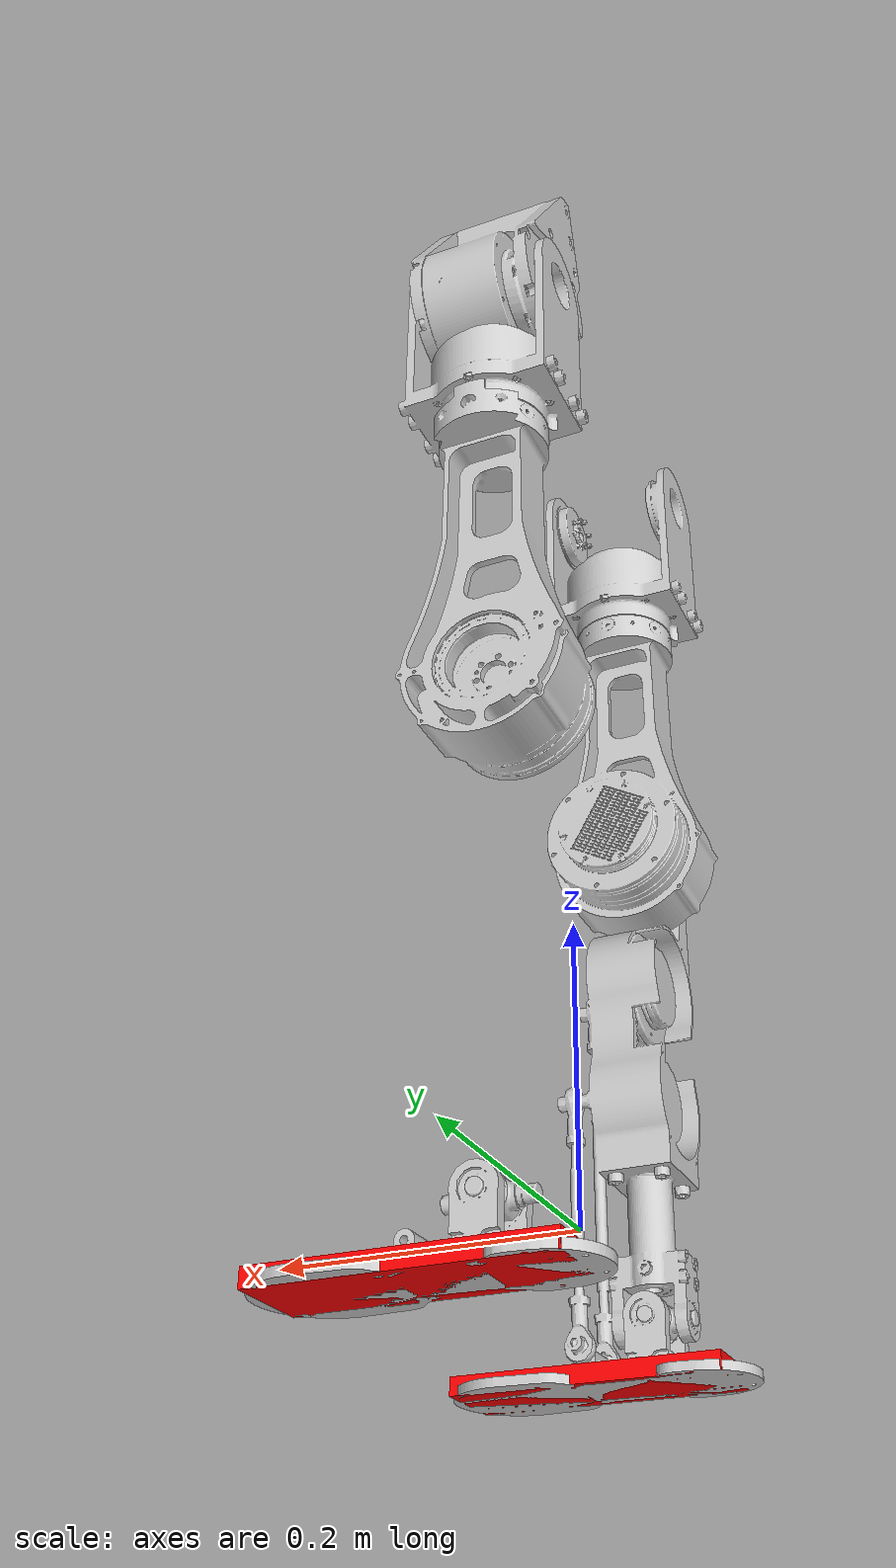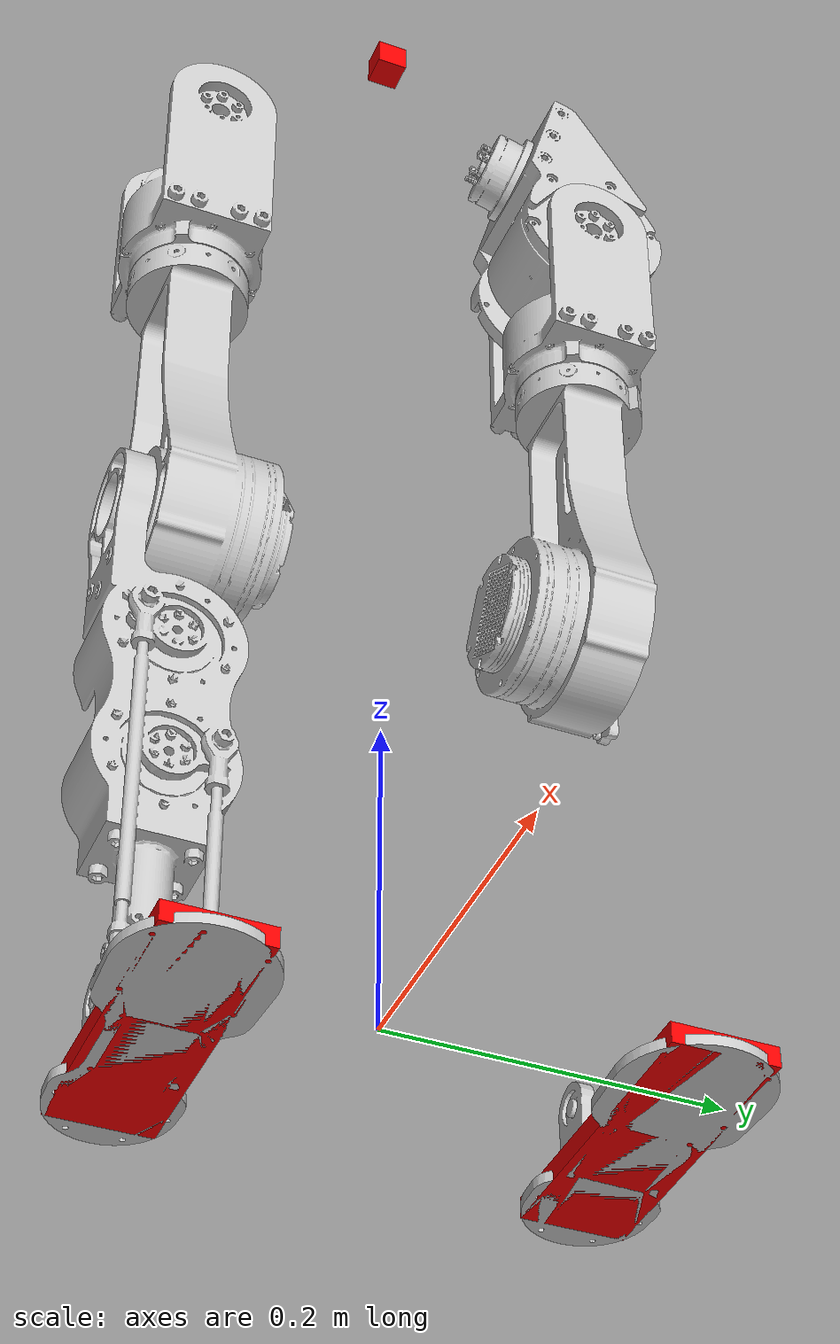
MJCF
<mujoco model="Bipedal_Final">
    <option gravity="0 0 -9.81" />
    <compiler angle="degree" meshdir="meshes/" autolimits="true" />
    <!-- discardvisual="True"  -->

    <option timestep="0.001"></option>
    <statistic extent="0.3" center="0.3 0 0" meansize=".03" />

    <default>
        <geom type="mesh" />
    </default>
    <default>
        <default class="visual">
            <geom contype="0" conaffinity="0" group="0" density="0" rgba="0.8 0.8 0.8 1" />
        </default>
        <default class="transparent">
            <geom contype="0" conaffinity="0" group="0" density="0" rgba="0.5 0.5 0.5 0.3" />
        </default>

        <default class="collision">
            <geom group="3" />
            <default class="contact">
                <geom size="0.09 0.03 0.006" pos="0.04 0 -0.034" type="box" contype="1"
                    conaffinity="1" friction="1.0 0.05 0.001" condim="3" />
                <site size="0.09 0.03 0.006" pos="0.04 0 -0.034" type="box" />
            </default>
            <default class="foot2">
                <geom size="0.027 0.0325" pos="0 9.61687e-05 0.0388277" type="cylinder" />
            </default>
        </default>

    </default>

    <default>
        <default class="AK8064_actuator">
            <joint damping="0.0" armature="0.0" frictionloss="0.0" />
        </default>

        <default class="AK7010_actuator">
            <joint damping="0.0" armature="0.0" frictionloss="0.0" />
        </default>

        <default class="AK109_actuator">
            <joint damping="0.0" armature="0.0" frictionloss="0.0" />
        </default>

        <default class="AK606_actuator">
            <joint damping="0.0" armature="0.0" frictionloss="0.0" />
        </default>
    </default>

    <!--   Fusion outputs meshes with mm units by default, but must be converted to m in MuJoCo, hence
    the scaling   -->
    <asset>
        <!--   Torso  -->
        <mesh name="link0_torso" file="link0_torso.stl" scale="0.001 0.001 0.001" />

        <!--   Left Leg stl file  -->
        <mesh name="left_hip_pitch_link_v2" file="left_hip_pitch_link_v2.stl" scale="0.001 0.001 0.001" />
        <mesh name="left_hip_roll_link" file="left_hip_roll_link.stl" scale="0.001 0.001 0.001" />
        <mesh name="left_hip_yaw_link" file="left_hip_yaw_link.stl" scale="0.001 0.001 0.001" />
        <mesh name="left_knee_link" file="left_knee_link.stl" scale="0.001 0.001 0.001" />
        <mesh name="left_ankle_roll_link" file="left_ankle_roll_link.stl" scale="0.001 0.001 0.001" />
        <mesh name="left_ankle_pitch_link" file="left_ankle_pitch_link.stl" scale="0.001 0.001 0.001" />

        <!--   Right stl file  -->
        <mesh name="right_hip_pitch_link_v2" file="right_hip_pitch_link_v2.stl" scale="0.001 0.001 0.001" />
        <mesh name="right_hip_roll_link" file="right_hip_roll_link.stl" scale="0.001 0.001 0.001" />
        <mesh name="right_hip_yaw_link" file="right_hip_yaw_link.stl" scale="0.001 0.001 0.001" />
        <mesh name="right_knee_link" file="right_knee_link.stl" scale="0.001 0.001 0.001" />
        <mesh name="right_ankle_roll_link" file="right_ankle_roll_link.stl" scale="0.001 0.001 0.001" />
        <mesh name="right_ankle_pitch_link" file="right_ankle_pitch_link.stl" scale="0.001 0.001 0.001" />

    </asset>

    <worldbody>
        <!--   Link0_Torso -->
        <body name="link0_torso" pos="0 0 0.80" euler="0 0 0">
            <geom type="mesh" class="visual" mesh="link0_torso" />
            <geom class="collision" size="0.09 0.170 0.170" pos="0 0 0.15" type="box" />
            <joint name="floating_base_joint" type="free" limited="false" actuatorfrclimited="false"/>
            <inertial pos="0.022E-3 0.011E-3 -9.359E-3" mass="5.721" fullinertia="1.338E-1 1.019E-1 6.278E-2 -7542.256E-9 8599.288E-9 8566.243E-9"/>
            <camera name="track" pos="1 0 1.5" xyaxes="0.78 -0.63 0 0.27 0.33 0.9"/>
            <site name="imu" type = "box" pos="0.0 0 0.0" euler="0 0 0" size="0.01 0.01 0.01" rgba="1 0 0 1"/>

            <!--   Left leg kinematic chain  -->
            <body name="left_hip_pitch_link" pos="0 89.761E-3 -81.437E-3" euler="-15 0 0">
                <joint type="hinge" name="left_hip_pitch_joint" axis="0 1 0" pos="0 0 0" range="-60 60" class = "AK109_actuator"/>
                <geom type="mesh" class="visual" mesh="left_hip_pitch_link_v2" />
                <geom class="collision" size="0.05 0.06 0.05" pos="0 0.065 0" type="box" />
                <inertial pos="3.703E-3 49.142E-3 -49.676E-3" mass="1.953" fullinertia="4.511E-3 4.159E-3 3.315E-3 -86060.731E-9 1.258E-4 1.110E-3" />

                    <body name="left_hip_roll_link" pos="0 61.114E-3 -66.874E-3" euler="15 0 0">
                        <joint type="hinge" name="left_hip_roll_joint" axis="1 0 0" pos="0 0 0" range="-45 60" class = "AK109_actuator"/>
                        <geom type="mesh" class="visual" mesh="left_hip_roll_link" />
                        <geom class="collision" size="0.05 0.04 0.04" pos="0 0 -0.105" type="box" />
                        <inertial pos="0.016E-3 -0.136E-3 -73.241E-3" mass="1.2918" fullinertia="2.359E-3 3.153E-3 1.975E-3 -927.06E-9 -3429.47E-9 -927.06E-9" />

                            <body name="left_hip_yaw_link" pos="0 0 -120.5E-3" euler="0 0 0">
                                <joint type="hinge" name="left_hip_yaw_joint" axis="0 0 1" pos="0 0 0" range="-45 45" class = "AK7010_actuator"/>
                                <geom type="mesh" class="visual" mesh="left_hip_yaw_link" />
                                <geom class="collision" size="0.06 0.05 0.05" pos="0 -0.01 -0.2" type="box" />
                                <inertial pos="-0.314E-3 -13.334E-3 -166.036E-3" mass="1.983" fullinertia="1.165E-2 1.208E-2 2.085E-3 26778.277E-9 -32964.406E-9 -9.808E-4" />

                                <body name="left_knee_link" pos="0 0 -203.5E-3" euler="0 0 0">
                                    <joint type="hinge" name="left_knee_pitch_joint" axis="0 1 0" pos="0 0 0" range="-10 120" class = "AK109_actuator"/>
                                    <geom type="mesh" class="visual" mesh="left_knee_link" />
                                    <geom class="collision" size="0.045 0.04 0.1" pos="0.01 0 -0.2" type="box" />
                                    <inertial pos="9.7E-3 3.585E-3 -164.623E-3" mass="1.894" fullinertia="1.720E-2 1.702E-2 1.510E-3 31715.102E-9 8.973E-4 -8.846E-4" />

                                         <body name="left_ankle_roll_link" pos="0 0 -335E-3" euler="0 0 0">
                                                <joint type="hinge" name="left_ankle_roll_joint" axis="1 0 0" pos="0 0 0" range="-15 15" class = "AK606_actuator"/>
                                                <geom type="mesh" class="visual" mesh="left_ankle_roll_link" />
                                                <inertial pos="0 0 0" mass="40.313E-3" fullinertia="7009E-9 3498.104E-9 5125.014E-9 0 0 0" />

                                                <body name="left_ankle_pitch_link" pos="0 0 0" euler="0 0 0">
                                                    <joint type="hinge" name="left_ankle_pitch_joint" axis="0 1 0" pos="0 0 0" range="-30 30" class = "AK606_actuator"/>
                                                    <geom name = "Left_Foot" type="mesh" friction="5.0 0.1 0.1" class="visual" mesh="left_ankle_pitch_link" />
                                                    <inertial pos="29.106E-3 0 -30.483E-3" mass="343.229E-3" fullinertia="1.546E-4 8.770E-4 9.434E-4 -9.97E-9 50230.908E-9 40.36E-9" />

                                                    <!-- This geom is for collision -->
                                                    <geom name="l_contact" class="contact" />

                                                    <!-- This site is for touch sensor -->
                                                    <site name="lf-tc" type="box" size="0.09 0.03 0.006"  pos="0.04 0 -0.034"  rgba="1 0 0 1" />

                                                </body>
                                         </body>
                                </body>
                            </body>
                    </body>
            </body>

            <body name="right_hip_pitch_link" pos="0 -89.761E-3 -81.437E-3" euler="15 0 0">
                <joint type="hinge" name="right_hip_pitch_joint" axis="0 1 0" pos="0 0 0" range="-60 60" class = "AK109_actuator"/>
                <geom type="mesh" class="visual" mesh="right_hip_pitch_link_v2" />
                <geom class="collision" size="0.05 0.06 0.05" pos="0 -0.065 0" type="box" />
                <inertial pos="3.822E-3 -49.04E-3 -49.628E-3" mass="1.953" fullinertia="4.535E-3 4.166E-3 3.33E-3 89505.93E-9 1.268E-9 -1.126E-3" />

                    <body name="right_hip_roll_link" pos="0 -61.114E-3 -66.874E-3" euler="-15 0 0">
                        <joint type="hinge" name="right_hip_roll_joint" axis="1 0 0" pos="0 0 0" ref="0" range="-60 35" class = "AK109_actuator"/>
                        <geom type="mesh" class="visual" mesh="right_hip_roll_link" />
                        <geom class="collision" size="0.05 0.04 0.04" pos="0 0 -0.105" type="box" />
                        <inertial pos="0.016E-3 -0.136E-3 -73.241E-3" mass="1.2918" fullinertia="2.359E-3 3.153E-3 1.975E-3 -927.06E-9 -3429.47E-9 -927.06E-9" />

                            <body name="right_hip_yaw_link" pos="0 0 -120.5E-3" euler="0 0 0">
                                <joint type="hinge" name="right_hip_yaw_joint" axis="0 0 1" pos="0 0 0" range="-45 45" class = "AK109_actuator"/>
                                <geom type="mesh" class="visual" mesh="right_hip_yaw_link" />
                                <geom class="collision" size="0.06 0.05 0.05" pos="0 0.01 -0.2" type="box" />
                                <inertial pos="-0.029E-3 13.844E-3 -165.473E-3" mass="1.983" fullinertia="1.164E-2 1.208E-2 2.009E-3 2389.96E-9 -1032.992E-9 9.596E-4" />

                                <body name="right_knee_link" pos="0 0 -203.5E-3" euler="0 0 0">
                                    <joint type="hinge" name="right_knee_pitch_joint" axis="0 1 0" pos="0 0 0" range="-10 120" class = "AK109_actuator"/>
                                    <geom type="mesh" class="visual" mesh="right_knee_link" />
                                    <geom class="collision" size="0.045 0.04 0.1" pos="0.01 0 -0.2" type="box" />
                                    <inertial pos="9.336E-3 -3.761E-3 -163.038E-3" mass="1.879" fullinertia="1.653E-2 1.633E-2 1.480E-3 -35348.501E-9 7.738E-4 8.795E-4" />

                                    <body name="right_ankle_roll_link" pos="0 0 -335E-3" euler="0 0 0">
                                        <joint type="hinge" name="right_ankle_roll_joint" axis="1 0 0" pos="0 0 0" range="-15 15" class = "AK606_actuator"/>
                                        <geom type="mesh" class="visual" mesh="right_ankle_roll_link" />
                                        <inertial pos="0 0 0" mass="40.313E-3" fullinertia="7009E-9 3498.104E-9 5125.014E-9 0 0 0" />

                                        <body name="right_ankle_pitch_link" pos="0 0 0" euler="0 0 0">
                                            <joint type="hinge" name="right_ankle_pitch_joint" axis="0 1 0" pos="0 0 0" range="-30 30" class = "AK606_actuator"/>
                                            <geom type="mesh" name = "Right_Foot" friction="5.0 0.1 0.1" class="visual" mesh="right_ankle_pitch_link" />
                                            <inertial pos="29.106E-3 0 -30.483E-3" mass="343.229E-3" fullinertia="1.546E-4 8.770E-4 9.434E-4 -9.97E-9 50230.908E-9 40.36E-9" />
                                            <!-- This geom is for collision -->
                                            <geom name="r_contact" class="contact" />
                                            <!-- This site is for touch sensor -->
                                            <site name="rf-tc" type="box" size="0.09 0.03 0.006"  pos="0.04 0 -0.034"  rgba="1 0 0 1" />
                                        </body>
                                    </body>
                                </body>
                            </body>
                    </body>
            </body>
        </body>
        <!--   End of 2 legs  -->
    </worldbody>

    <actuator>
        <motor name="Left_Hip_Pitch_m" joint="left_hip_pitch_joint" ctrlrange="-48 48" />
        <motor name="Left_Hip_Roll_m" joint="left_hip_roll_joint" ctrlrange="-48 48" />
        <motor name="Left_Hip_Yaw_m" joint="left_hip_yaw_joint" ctrlrange="-16 16" />
        <motor name="Left_Knee_m" joint="left_knee_pitch_joint" ctrlrange="-48 48" />
        <motor name="Left_Ank_Roll_m" joint="left_ankle_roll_joint" ctrlrange="-18 18" />
        <motor name="Left_Ank_Pitch_m" joint="left_ankle_pitch_joint" ctrlrange="-18 18" />

        <motor name="Right_Hip_Pitch_m" joint="right_hip_pitch_joint" ctrlrange="-48 48" />
        <motor name="Right_Hip_Roll_m" joint="right_hip_roll_joint" ctrlrange="-48 48" />
        <motor name="Right_Hip_Yaw_m" joint="right_hip_yaw_joint" ctrlrange="-16 16" />
        <motor name="Right_Knee_m" joint="right_knee_pitch_joint" ctrlrange="-48 48" />
        <motor name="Right_Ank_Roll_m" joint="right_ankle_roll_joint" ctrlrange="-18 18" />
        <motor name="Right_Ank_Pitch_m" joint="right_ankle_pitch_joint" ctrlrange="-18 18" />
    </actuator>

  <sensor>
      <framequat name="baselink-quat" objtype="site" objname="imu" />
      <velocimeter name="baselink-velocity" site="imu" />
      <gyro name="baselink-gyro" site="imu" />
      <accelerometer name="baselink-baseAcc" site="imu" />
      <touch name="lf-touch" site="lf-tc" />
      <touch name="rf-touch" site="rf-tc" />
  </sensor>
</mujoco>
